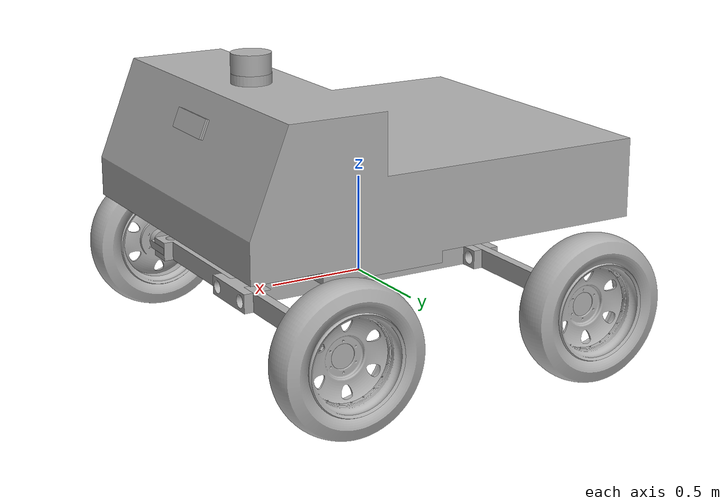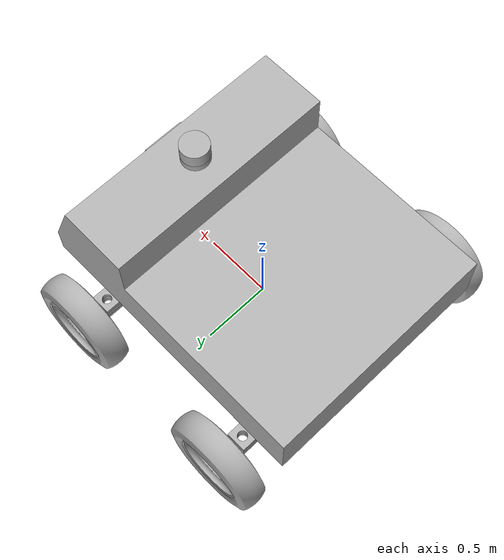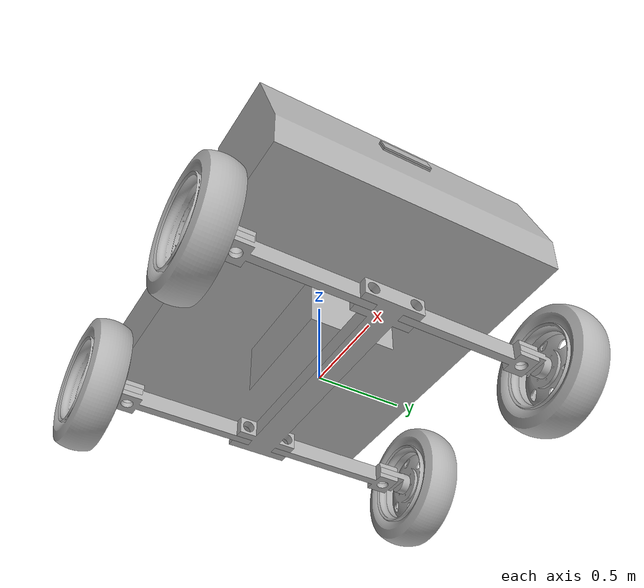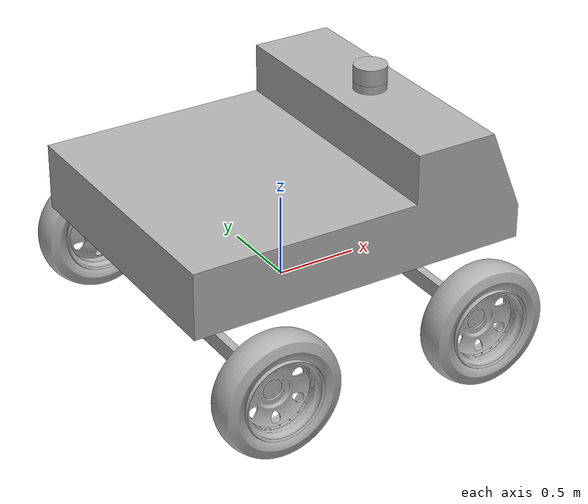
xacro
<?xml version="1.0" ?>
<robot name="car" xmlns:xacro="http://www.ros.org/wiki/xacro">

<xacro:include filename="$(find car)/urdf/materials.xacro" />
<xacro:include filename="$(find car)/urdf/car.trans" />
<xacro:include filename="$(find car)/urdf/car.gazebo" />
<xacro:include filename="$(find car)/urdf/camara.plugin.xacro" />
<xacro:include filename="$(find car)/urdf/lidar.plugin.xacro" />
<link name="base_link">
  <inertial>
    <origin xyz="0.0 0.0 -5.8299495211720805e-18" rpy="0 0 0"/>
    <mass value="195.94086385796686"/>
    <inertia ixx="0.825102" iyy="42.139945" izz="42.62574" ixy="0.0" iyz="-0.0" ixz="0.0"/>
  </inertial>
  <visual>
    <origin xyz="0 0 0" rpy="0 0 0"/>
    <geometry>
      <mesh filename="file://$(find car)/meshes/base_link.stl" scale="0.001 0.001 0.001"/>
    </geometry>
    <material name="silver"/>
  </visual>
  <collision>
    <origin xyz="0 0 0" rpy="0 0 0"/>
    <geometry>
      <mesh filename="file://$(find car)/meshes/base_link.stl" scale="0.001 0.001 0.001"/>
    </geometry>
  </collision>
</link>

<link name="chasis_1">
  <inertial>
    <origin xyz="0.09238270773822028 0.0 0.5327884318036319" rpy="0 0 0"/>
    <mass value="14235.910080029777"/>
    <inertia ixx="3772.896581" iyy="5428.125259" izz="8145.031104" ixy="0.0" iyz="0.0" ixz="-431.237028"/>
  </inertial>
  <visual>
    <origin xyz="-0.0 -0.0 -0.05" rpy="0 0 0"/>
    <geometry>
      <mesh filename="file://$(find car)/meshes/chasis_1.stl" scale="0.001 0.001 0.001"/>
    </geometry>
    <material name="silver"/>
  </visual>
  <collision>
    <origin xyz="-0.0 -0.0 -0.05" rpy="0 0 0"/>
    <geometry>
      <mesh filename="file://$(find car)/meshes/chasis_1.stl" scale="0.001 0.001 0.001"/>
    </geometry>
  </collision>
</link>

<link name="suspension_front_left__1">
  <inertial>
    <origin xyz="-0.02499999999999991 0.4032961129921663 -1.7763568394002505e-17" rpy="0 0 0"/>
    <mass value="33.21861256094089"/>
    <inertia ixx="1.897101" iyy="0.053443" izz="1.887366" ixy="0.0" iyz="0.0" ixz="0.0"/>
  </inertial>
  <visual>
    <origin xyz="-0.7 -0.125 -0.0" rpy="0 0 0"/>
    <geometry>
      <mesh filename="file://$(find car)/meshes/suspension_front_left__1.stl" scale="0.001 0.001 0.001"/>
    </geometry>
    <material name="silver"/>
  </visual>
  <collision>
    <origin xyz="-0.7 -0.125 -0.0" rpy="0 0 0"/>
    <geometry>
      <mesh filename="file://$(find car)/meshes/suspension_front_left__1.stl" scale="0.001 0.001 0.001"/>
    </geometry>
  </collision>
</link>

<link name="direction_front_left_1">
  <inertial>
    <origin xyz="0.0 0.07474229529205356 -0.01999999999999999" rpy="0 0 0"/>
    <mass value="11.38685889441971"/>
    <inertia ixx="0.054235" iyy="0.024086" izz="0.067971" ixy="0.0" iyz="0.0" ixz="0.0"/>
  </inertial>
  <visual>
    <origin xyz="-0.675 -0.8375 -0.02" rpy="0 0 0"/>
    <geometry>
      <mesh filename="file://$(find car)/meshes/direction_front_left_1.stl" scale="0.001 0.001 0.001"/>
    </geometry>
    <material name="silver"/>
  </visual>
  <collision>
    <origin xyz="-0.675 -0.8375 -0.02" rpy="0 0 0"/>
    <geometry>
      <mesh filename="file://$(find car)/meshes/direction_front_left_1.stl" scale="0.001 0.001 0.001"/>
    </geometry>
  </collision>
</link>

<link name="rim_front_left_1">
  <inertial>
    <origin xyz="-8.236798832994552e-07 0.04445848581580858 3.411160743613806e-06" rpy="0 0 0"/>
    <mass value="35.26167787649671"/>
    <inertia ixx="0.833793" iyy="1.488731" izz="0.833793" ixy="-0.0" iyz="-3e-06" ixz="-1e-06"/>
  </inertial>
  <visual>
    <origin xyz="-0.675 -1.0 -0.0" rpy="0 0 0"/>
    <geometry>
      <mesh filename="file://$(find car)/meshes/rim_front_left_1.stl" scale="0.001 0.001 0.001"/>
    </geometry>
    <material name="silver"/>
  </visual>
  <collision>
    <origin xyz="-0.675 -1.0 -0.0" rpy="0 0 0"/>
    <geometry>
      <mesh filename="file://$(find car)/meshes/rim_front_left_1.stl" scale="0.001 0.001 0.001"/>
    </geometry>
  </collision>
</link>

<link name="tire_front_right_1">
  <inertial>
    <origin xyz="-2.55351295663786e-15 -1.8654241529247884e-07 1.4210854715202004e-16" rpy="0 0 0"/>
    <mass value="72.81552294350315"/>
    <inertia ixx="4.088543" iyy="7.430415" izz="4.088543" ixy="0.0" iyz="-0.0" ixz="-0.0"/>
  </inertial>
  <visual>
    <origin xyz="-0.675 -1.047622 -0.0" rpy="0 0 0"/>
    <geometry>
      <mesh filename="file://$(find car)/meshes/tire_front_right_1.stl" scale="0.001 0.001 0.001"/>
    </geometry>
    <material name="silver"/>
  </visual>
  <collision>
    <origin xyz="-0.675 -1.047622 -0.0" rpy="0 0 0"/>
    <geometry>
      <mesh filename="file://$(find car)/meshes/tire_front_right_1.stl" scale="0.001 0.001 0.001"/>
    </geometry>
  </collision>
</link>

<link name="suspension_front_right_1">
  <inertial>
    <origin xyz="-0.02499999999999991 -0.4032961129921663 0.0" rpy="0 0 0"/>
    <mass value="33.21861256094089"/>
    <inertia ixx="1.897101" iyy="0.053443" izz="1.887366" ixy="0.0" iyz="0.0" ixz="-0.0"/>
  </inertial>
  <visual>
    <origin xyz="-0.7 0.125 -0.0" rpy="0 0 0"/>
    <geometry>
      <mesh filename="file://$(find car)/meshes/suspension_front_right_1.stl" scale="0.001 0.001 0.001"/>
    </geometry>
    <material name="silver"/>
  </visual>
  <collision>
    <origin xyz="-0.7 0.125 -0.0" rpy="0 0 0"/>
    <geometry>
      <mesh filename="file://$(find car)/meshes/suspension_front_right_1.stl" scale="0.001 0.001 0.001"/>
    </geometry>
  </collision>
</link>

<link name="direction_front_right_1">
  <inertial>
    <origin xyz="-3.3306690738754696e-16 -0.07474229529205345 0.02" rpy="0 0 0"/>
    <mass value="11.386858894419674"/>
    <inertia ixx="0.054235" iyy="0.024086" izz="0.067971" ixy="0.0" iyz="0.0" ixz="0.0"/>
  </inertial>
  <visual>
    <origin xyz="-0.675 0.8375 0.02" rpy="0 0 0"/>
    <geometry>
      <mesh filename="file://$(find car)/meshes/direction_front_right_1.stl" scale="0.001 0.001 0.001"/>
    </geometry>
    <material name="silver"/>
  </visual>
  <collision>
    <origin xyz="-0.675 0.8375 0.02" rpy="0 0 0"/>
    <geometry>
      <mesh filename="file://$(find car)/meshes/direction_front_right_1.stl" scale="0.001 0.001 0.001"/>
    </geometry>
  </collision>
</link>

<link name="rim_front_right_1">
  <inertial>
    <origin xyz="-6.193392562137134e-07 -0.04445832186276233 -3.799540938658197e-06" rpy="0 0 0"/>
    <mass value="35.2612545549612"/>
    <inertia ixx="0.833786" iyy="1.48872" izz="0.833785" ixy="-1e-06" iyz="-3e-06" ixz="-3e-06"/>
  </inertial>
  <visual>
    <origin xyz="-0.675 1.0 -0.0" rpy="0 0 0"/>
    <geometry>
      <mesh filename="file://$(find car)/meshes/rim_front_right_1.stl" scale="0.001 0.001 0.001"/>
    </geometry>
    <material name="silver"/>
  </visual>
  <collision>
    <origin xyz="-0.675 1.0 -0.0" rpy="0 0 0"/>
    <geometry>
      <mesh filename="file://$(find car)/meshes/rim_front_right_1.stl" scale="0.001 0.001 0.001"/>
    </geometry>
  </collision>
</link>

<link name="tire_back_left_1">
  <inertial>
    <origin xyz="-4.773959005888173e-15 1.865424268387983e-07 1.7763568394002505e-15" rpy="0 0 0"/>
    <mass value="72.8155229435052"/>
    <inertia ixx="4.088543" iyy="7.430415" izz="4.088543" ixy="0.0" iyz="-0.0" ixz="0.0"/>
  </inertial>
  <visual>
    <origin xyz="-0.675 1.047622 -0.0" rpy="0 0 0"/>
    <geometry>
      <mesh filename="file://$(find car)/meshes/tire_back_left_1.stl" scale="0.001 0.001 0.001"/>
    </geometry>
    <material name="silver"/>
  </visual>
  <collision>
    <origin xyz="-0.675 1.047622 -0.0" rpy="0 0 0"/>
    <geometry>
      <mesh filename="file://$(find car)/meshes/tire_back_left_1.stl" scale="0.001 0.001 0.001"/>
    </geometry>
  </collision>
</link>

<link name="suspension_back_right_1">
  <inertial>
    <origin xyz="0.02499999999999991 -0.4032961129921663 0.0" rpy="0 0 0"/>
    <mass value="33.21861256094089"/>
    <inertia ixx="1.897101" iyy="0.053443" izz="1.887366" ixy="0.0" iyz="0.0" ixz="0.0"/>
  </inertial>
  <visual>
    <origin xyz="0.7 0.125 -0.0" rpy="0 0 0"/>
    <geometry>
      <mesh filename="file://$(find car)/meshes/suspension_back_right_1.stl" scale="0.001 0.001 0.001"/>
    </geometry>
    <material name="silver"/>
  </visual>
  <collision>
    <origin xyz="0.7 0.125 -0.0" rpy="0 0 0"/>
    <geometry>
      <mesh filename="file://$(find car)/meshes/suspension_back_right_1.stl" scale="0.001 0.001 0.001"/>
    </geometry>
  </collision>
</link>

<link name="direction_back_right_1">
  <inertial>
    <origin xyz="0.002014722651420331 -0.07474229529205345 0.02" rpy="0 0 0"/>
    <mass value="11.386858894419664"/>
    <inertia ixx="0.054235" iyy="0.024154" izz="0.06804" ixy="0.00144" iyz="0.0" ixz="-0.0"/>
  </inertial>
  <visual>
    <origin xyz="0.675 0.8375 0.02" rpy="0 0 0"/>
    <geometry>
      <mesh filename="file://$(find car)/meshes/direction_back_right_1.stl" scale="0.001 0.001 0.001"/>
    </geometry>
    <material name="silver"/>
  </visual>
  <collision>
    <origin xyz="0.675 0.8375 0.02" rpy="0 0 0"/>
    <geometry>
      <mesh filename="file://$(find car)/meshes/direction_back_right_1.stl" scale="0.001 0.001 0.001"/>
    </geometry>
  </collision>
</link>

<link name="rim_back_left_1">
  <inertial>
    <origin xyz="-6.193390665876208e-07 -0.04445832186276344 -3.799540942353019e-06" rpy="0 0 0"/>
    <mass value="35.261254554957446"/>
    <inertia ixx="0.833786" iyy="1.48872" izz="0.833785" ixy="-1e-06" iyz="-3e-06" ixz="-3e-06"/>
  </inertial>
  <visual>
    <origin xyz="0.67 1.0 -0.0" rpy="0 0 0"/>
    <geometry>
      <mesh filename="file://$(find car)/meshes/rim_back_left_1.stl" scale="0.001 0.001 0.001"/>
    </geometry>
    <material name="silver"/>
  </visual>
  <collision>
    <origin xyz="0.67 1.0 -0.0" rpy="0 0 0"/>
    <geometry>
      <mesh filename="file://$(find car)/meshes/rim_back_left_1.stl" scale="0.001 0.001 0.001"/>
    </geometry>
  </collision>
</link>

<link name="tire_back_right_1">
  <inertial>
    <origin xyz="-9.325873406851315e-15 1.8654242439630764e-07 1.7053025658242404e-15" rpy="0 0 0"/>
    <mass value="72.81552294350364"/>
    <inertia ixx="4.088543" iyy="7.430415" izz="4.088543" ixy="0.0" iyz="-0.0" ixz="0.0"/>
  </inertial>
  <visual>
    <origin xyz="0.67 1.047622 -0.0" rpy="0 0 0"/>
    <geometry>
      <mesh filename="file://$(find car)/meshes/tire_back_right_1.stl" scale="0.001 0.001 0.001"/>
    </geometry>
    <material name="silver"/>
  </visual>
  <collision>
    <origin xyz="0.67 1.047622 -0.0" rpy="0 0 0"/>
    <geometry>
      <mesh filename="file://$(find car)/meshes/tire_back_right_1.stl" scale="0.001 0.001 0.001"/>
    </geometry>
  </collision>
</link>

<link name="suspension_back_left_1">
  <inertial>
    <origin xyz="-0.025000000000000022 0.4032961129921663 0.0" rpy="0 0 0"/>
    <mass value="33.2186125609409"/>
    <inertia ixx="1.897101" iyy="0.053443" izz="1.887366" ixy="0.0" iyz="0.0" ixz="-0.0"/>
  </inertial>
  <visual>
    <origin xyz="0.65 -0.125 -0.0" rpy="0 0 0"/>
    <geometry>
      <mesh filename="file://$(find car)/meshes/suspension_back_left_1.stl" scale="0.001 0.001 0.001"/>
    </geometry>
    <material name="silver"/>
  </visual>
  <collision>
    <origin xyz="0.65 -0.125 -0.0" rpy="0 0 0"/>
    <geometry>
      <mesh filename="file://$(find car)/meshes/suspension_back_left_1.stl" scale="0.001 0.001 0.001"/>
    </geometry>
  </collision>
</link>

<link name="direction_back_left_1">
  <inertial>
    <origin xyz="0.002014722651420331 0.07474229529205356 -0.02" rpy="0 0 0"/>
    <mass value="11.386858894419678"/>
    <inertia ixx="0.054235" iyy="0.024154" izz="0.06804" ixy="-0.00144" iyz="0.0" ixz="0.0"/>
  </inertial>
  <visual>
    <origin xyz="0.675 -0.8375 -0.02" rpy="0 0 0"/>
    <geometry>
      <mesh filename="file://$(find car)/meshes/direction_back_left_1.stl" scale="0.001 0.001 0.001"/>
    </geometry>
    <material name="silver"/>
  </visual>
  <collision>
    <origin xyz="0.675 -0.8375 -0.02" rpy="0 0 0"/>
    <geometry>
      <mesh filename="file://$(find car)/meshes/direction_back_left_1.stl" scale="0.001 0.001 0.001"/>
    </geometry>
  </collision>
</link>

<link name="rim_back_right_1">
  <inertial>
    <origin xyz="-6.193391306474894e-07 0.04445832186276366 3.7995409559243855e-06" rpy="0 0 0"/>
    <mass value="35.26125455495827"/>
    <inertia ixx="0.833786" iyy="1.48872" izz="0.833785" ixy="1e-06" iyz="-3e-06" ixz="3e-06"/>
  </inertial>
  <visual>
    <origin xyz="0.67 -1.0 -0.0" rpy="0 0 0"/>
    <geometry>
      <mesh filename="file://$(find car)/meshes/rim_back_right_1.stl" scale="0.001 0.001 0.001"/>
    </geometry>
    <material name="silver"/>
  </visual>
  <collision>
    <origin xyz="0.67 -1.0 -0.0" rpy="0 0 0"/>
    <geometry>
      <mesh filename="file://$(find car)/meshes/rim_back_right_1.stl" scale="0.001 0.001 0.001"/>
    </geometry>
  </collision>
</link>

<link name="tire_front_left_1">
  <inertial>
    <origin xyz="-1.099120794378905e-14 -7.410210978164855e-08 1.9895196601282807e-15" rpy="0 0 0"/>
    <mass value="72.81552294350463"/>
    <inertia ixx="4.088543" iyy="7.430415" izz="4.088543" ixy="0.0" iyz="-0.0" ixz="0.0"/>
  </inertial>
  <visual>
    <origin xyz="0.67 -1.055557 -0.0" rpy="0 0 0"/>
    <geometry>
      <mesh filename="file://$(find car)/meshes/tire_front_left_1.stl" scale="0.001 0.001 0.001"/>
    </geometry>
    <material name="silver"/>
  </visual>
  <collision>
    <origin xyz="0.67 -1.055557 -0.0" rpy="0 0 0"/>
    <geometry>
      <mesh filename="file://$(find car)/meshes/tire_front_left_1.stl" scale="0.001 0.001 0.001"/>
    </geometry>
  </collision>
</link>

<link name="Lidar">
  <inertial>
    <origin xyz="1.1102230246251565e-16 0.0 0.050000000000000044" rpy="0 0 0"/>
    <mass value="24.661502330679877"/>
    <inertia ixx="0.082205" iyy="0.082205" izz="0.123308" ixy="0.0" iyz="0.0" ixz="0.0"/>
  </inertial>
  <visual>
    <origin xyz="-0.6 -0.0 -1.1" rpy="0 0 0"/>
    <geometry>
      <mesh filename="file://$(find car)/meshes/Lidar.stl" scale="0.001 0.001 0.001"/>
    </geometry>
    <material name="silver"/>
  </visual>
  <collision>
    <origin xyz="-0.6 -0.0 -1.1" rpy="0 0 0"/>
    <geometry>
      <mesh filename="file://$(find car)/meshes/Lidar.stl" scale="0.001 0.001 0.001"/>
    </geometry>
  </collision>
</link>

<link name="Camara">
  <inertial>
    <origin xyz="0.004642800215265086 0.0 0.0018567355153459308" rpy="0 0 0"/>
    <mass value="2.3549999999999622"/>
    <inertia ixx="0.019357" iyy="0.001982" izz="0.01795" ixy="-0.0" iyz="0.0" ixz="0.00067"/>
  </inertial>
  <visual>
    <origin xyz="-0.925082 -0.0 -0.88922" rpy="0 0 0"/>
    <geometry>
      <mesh filename="file://$(find car)/meshes/Camara.stl" scale="0.001 0.001 0.001"/>
    </geometry>
    <material name="silver"/>
  </visual>
  <collision>
    <origin xyz="-0.925082 -0.0 -0.88922" rpy="0 0 0"/>
    <geometry>
      <mesh filename="file://$(find car)/meshes/Camara.stl" scale="0.001 0.001 0.001"/>
    </geometry>
  </collision>
</link>

<joint name="Rigid 25" type="fixed">
  <origin xyz="0.0 0.0 0.05" rpy="0 0 0"/>
  <parent link="base_link"/>
  <child link="chasis_1"/>
</joint>

<joint name="Rigid 26" type="fixed">
  <origin xyz="0.7 0.125 0.0" rpy="0 0 0"/>
  <parent link="base_link"/>
  <child link="suspension_front_left__1"/>
</joint>

<joint name="front_left_steer_joint" type="revolute">
  <origin xyz="-0.025 0.7125 0.02" rpy="0 0 0"/>
  <parent link="suspension_front_left__1"/>
  <child link="direction_front_left_1"/>
  <axis xyz="0.0 0.0 -1.0"/>
  <limit upper="0.523599" lower="-0.523599" effort="100" velocity="100"/>
</joint>

<joint name="front_left_wheel_joint" type="continuous">
  <origin xyz="0.0 0.1625 -0.02" rpy="0 0 0"/>
  <parent link="direction_front_left_1"/>
  <child link="rim_front_left_1"/>
  <axis xyz="0.0 1.0 0.0"/>
</joint>

<joint name="Rigid 29" type="fixed">
  <origin xyz="0.0 0.047622 0.0" rpy="0 0 0"/>
  <parent link="rim_front_left_1"/>
  <child link="tire_front_right_1"/>
</joint>

<joint name="Rigid 30" type="fixed">
  <origin xyz="0.7 -0.125 0.0" rpy="0 0 0"/>
  <parent link="base_link"/>
  <child link="suspension_front_right_1"/>
</joint>

<joint name="front_right_steer_joint" type="revolute">
  <origin xyz="-0.025 -0.7125 -0.02" rpy="0 0 0"/>
  <parent link="suspension_front_right_1"/>
  <child link="direction_front_right_1"/>
  <axis xyz="0.0 0.0 1.0"/>
  <limit upper="0.523599" lower="-0.523599" effort="100" velocity="100"/>
</joint>

<joint name="front_right_wheel_joint" type="continuous">
  <origin xyz="0.0 -0.1625 0.02" rpy="0 0 0"/>
  <parent link="direction_front_right_1"/>
  <child link="rim_front_right_1"/>
  <axis xyz="0.0 -1.0 0.0"/>
</joint>

<joint name="Rigid 33" type="fixed">
  <origin xyz="0.0 -0.047622 0.0" rpy="0 0 0"/>
  <parent link="rim_front_right_1"/>
  <child link="tire_back_left_1"/>
</joint>

<joint name="Rigid 34" type="fixed">
  <origin xyz="-0.7 -0.125 0.0" rpy="0 0 0"/>
  <parent link="base_link"/>
  <child link="suspension_back_right_1"/>
</joint>

<joint name="Revolute 35" type="fixed">
  <origin xyz="0.025 -0.7125 -0.02" rpy="0 0 0"/>
  <parent link="suspension_back_right_1"/>
  <child link="direction_back_right_1"/>
  <axis xyz="0.0 0.0 1.0"/>
</joint>

<joint name="back_right_wheel_joint" type="continuous">
  <origin xyz="0.005 -0.1625 0.02" rpy="0 0 0"/>
  <parent link="direction_back_right_1"/>
  <child link="rim_back_left_1"/>
  <axis xyz="0.0 -1.0 0.0"/>
</joint>

<joint name="Rigid 37" type="fixed">
  <origin xyz="0.0 -0.047622 0.0" rpy="0 0 0"/>
  <parent link="rim_back_left_1"/>
  <child link="tire_back_right_1"/>
</joint>

<joint name="Rigid 38" type="fixed">
  <origin xyz="-0.65 0.125 0.0" rpy="0 0 0"/>
  <parent link="base_link"/>
  <child link="suspension_back_left_1"/>
</joint>

<joint name="Revolute 39" type="fixed">
  <origin xyz="-0.025 0.7125 0.02" rpy="0 0 0"/>
  <parent link="suspension_back_left_1"/>
  <child link="direction_back_left_1"/>
  <axis xyz="0.0 0.0 -1.0"/>
</joint>

<joint name="back_left_wheel_joint" type="continuous">
  <origin xyz="0.005 0.1625 -0.02" rpy="0 0 0"/>
  <parent link="direction_back_left_1"/>
  <child link="rim_back_right_1"/>
  <axis xyz="0.0 1.0 0.0"/>
</joint>

<joint name="Rigid 41" type="fixed">
  <origin xyz="0.0 0.055557 0.0" rpy="0 0 0"/>
  <parent link="rim_back_right_1"/>
  <child link="tire_front_left_1"/>
</joint>

<joint name="Rigid 42" type="fixed">
  <origin xyz="0.6 0.0 1.05" rpy="0 0 0"/>
  <parent link="chasis_1"/>
  <child link="Lidar"/>
</joint>

<joint name="Rigid 43" type="fixed">
  <origin xyz="0.925082 0.0 0.83922" rpy="0 0 0"/>
  <parent link="chasis_1"/>
  <child link="Camara"/>
</joint>

<link name="camera_optical_frame">
</link>

<joint name="camera_optical_joint" type="fixed">
<parent link="Camara"/>
<child link="camera_optical_frame"/>
<!-- Ajusta rpy para alinear el frame óptico -->
<origin xyz="0 0 0" rpy="-1.5708 0 -1.5708"/>
</joint>

<link name="base_footprint">
</link>

<joint name="base_footprint" type="fixed">
  <parent link="base_link"/>
  <child link="base_footprint"/>
  <!-- Ajusta rpy para alinear el frame óptico -->
  <origin xyz="0 0 0" rpy="0 0 0"/>
</joint>

<link name="lidar_footprint">
</link>

<joint name="lidar_footprint" type="fixed">
  <parent link="Lidar"/>
  <child link="lidar_footprint"/>
  <!-- Ajusta rpy para alinear el frame óptico -->
  <origin xyz="0 0 0" rpy="0 0 0"/>
</joint>

 <gazebo>
  <plugin name="imu_controller" filename="libhector_gazebo_ros_imu.so">
  <robotNamespace>car</robotNamespace>
  <updateRate>50.0</updateRate>
  <bodyName>base_link</bodyName>
  <topicName>imu/data</topicName>
  <accelDrift>0.005 0.005 0.005</accelDrift>
  <accelGaussianNoise>0.005 0.005 0.005</accelGaussianNoise>
  <rateDrift>0.005 0.005 0.005 </rateDrift>
  <rateGaussianNoise>0.005 0.005 0.005 </rateGaussianNoise>
  <headingDrift>0.005</headingDrift>
  <headingGaussianNoise>0.005</headingGaussianNoise>
  </plugin>
</gazebo>

<gazebo>
  <plugin name="gps_controller" filename="libhector_gazebo_ros_gps.so">
  <robotNamespace>car</robotNamespace>
  <updateRate>50</updateRate>
  <bodyName>base_link</bodyName>
  <frameId>base_link</frameId>
  <topicName>navsat/fix</topicName>
  <velocityTopicName>navsat/vel</velocityTopicName>
  <referenceLatitude>49.9</referenceLatitude>
  <referenceLongitude>8.9</referenceLongitude>
  <referenceHeading>0</referenceHeading>
  <referenceAltitude>0</referenceAltitude>
  <drift>0.0001 0.0001 0.0001</drift>
  </plugin>
</gazebo>

<gazebo>
  <plugin name="ControlPlugin" filename="libcontrol_plugin.so">
    <left_front_wheel_joint>front_left_steer_joint</left_front_wheel_joint>
    <right_front_wheel_joint>front_right_steer_joint</right_front_wheel_joint>
    <left_back_wheel_joint>back_left_wheel_joint</left_back_wheel_joint>
    <right_back_wheel_joint>back_right_wheel_joint</right_back_wheel_joint>
    <left_front_speed_wheel_joint>front_left_wheel_joint</left_front_speed_wheel_joint>
    <right_front_speed_wheel_joint>front_right_wheel_joint</right_front_speed_wheel_joint>
  </plugin>
</gazebo>

<gazebo>
  <plugin name="joint_state_publisher_plugin" filename="libjoints_plugin.so">
    <robotNamespace>car</robotNamespace>
    <updateRate>50.0</updateRate>
  </plugin>
</gazebo>

</robot>

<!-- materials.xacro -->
<robot name="car" xmlns:xacro="http://www.ros.org/wiki/xacro" >

<material name="silver">
  <color rgba="0.700 0.700 0.700 1.000"/>
</material>

</robot>

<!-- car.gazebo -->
<robot name="car" xmlns:xacro="http://www.ros.org/wiki/xacro" >

<xacro:property name="body_color" value="Gazebo/White" />

<gazebo reference="base_link">
  <material>${body_color}</material>
  <mu1>5</mu1>
  <mu2>5</mu2>
  <self_collide>true</self_collide>
  <gravity>true</gravity>
</gazebo>

<gazebo reference="chasis_1">
  <material>${body_color}</material>
  <mu1>5</mu1>
  <mu2>5</mu2>
  <self_collide>true</self_collide>
</gazebo>

<gazebo reference="suspension_front_left__1">
  <material>${body_color}</material>
  <mu1>5</mu1>
  <mu2>5</mu2>
  <self_collide>true</self_collide>
</gazebo>

<gazebo reference="direction_front_left_1">
  <material>${body_color}</material>
  <mu1>5</mu1>
  <mu2>5</mu2>
  <self_collide>true</self_collide>
</gazebo>

<gazebo reference="rim_front_left_1">
  <material>${body_color}</material>
  <mu1>5</mu1>
  <mu2>5</mu2>
  <self_collide>true</self_collide>
</gazebo>

<gazebo reference="tire_front_right_1">
  <material>${body_color}</material>
  <mu1>5</mu1>
  <mu2>5</mu2>
  <self_collide>true</self_collide>
</gazebo>

<gazebo reference="suspension_front_right_1">
  <material>${body_color}</material>
  <mu1>5</mu1>
  <mu2>5</mu2>
  <self_collide>true</self_collide>
</gazebo>

<gazebo reference="direction_front_right_1">
  <material>${body_color}</material>
  <mu1>5</mu1>
  <mu2>5</mu2>
  <self_collide>true</self_collide>
</gazebo>

<gazebo reference="rim_front_right_1">
  <material>${body_color}</material>
  <mu1>5</mu1>
  <mu2>5</mu2>
  <self_collide>true</self_collide>
</gazebo>

<gazebo reference="tire_back_left_1">
  <material>${body_color}</material>
  <mu1>5</mu1>
  <mu2>5</mu2>
  <self_collide>true</self_collide>
</gazebo>

<gazebo reference="suspension_back_right_1">
  <material>${body_color}</material>
  <mu1>5</mu1>
  <mu2>5</mu2>
  <self_collide>true</self_collide>
</gazebo>

<gazebo reference="direction_back_right_1">
  <material>${body_color}</material>
  <mu1>5</mu1>
  <mu2>5</mu2>
  <self_collide>true</self_collide>
</gazebo>

<gazebo reference="rim_back_left_1">
  <material>${body_color}</material>
  <mu1>5</mu1>
  <mu2>5</mu2>
  <self_collide>true</self_collide>
</gazebo>

<gazebo reference="tire_back_right_1">
  <material>${body_color}</material>
  <mu1>5</mu1>
  <mu2>5</mu2>
  <self_collide>true</self_collide>
</gazebo>

<gazebo reference="suspension_back_left_1">
  <material>${body_color}</material>
  <mu1>5</mu1>
  <mu2>5</mu2>
  <self_collide>true</self_collide>
</gazebo>

<gazebo reference="direction_back_left_1">
  <material>${body_color}</material>
  <mu1>5</mu1>
  <mu2>5</mu2>
  <self_collide>true</self_collide>
</gazebo>

<gazebo reference="rim_back_right_1">
  <material>${body_color}</material>
  <mu1>5</mu1>
  <mu2>5</mu2>
  <self_collide>true</self_collide>
</gazebo>

<gazebo reference="tire_front_left_1">
  <material>${body_color}</material>
  <mu1>5</mu1>
  <mu2>5</mu2>
  <self_collide>true</self_collide>
</gazebo>

<gazebo reference="Lidar_1">
  <material>${body_color}</material>
  <mu1>5</mu1>
  <mu2>5</mu2>
  <self_collide>true</self_collide>
</gazebo>

<gazebo reference="camara_1">
  <material>${body_color}</material>
  <mu1>5</mu1>
  <mu2>5</mu2>
  <self_collide>true</self_collide>
</gazebo>

</robot>
